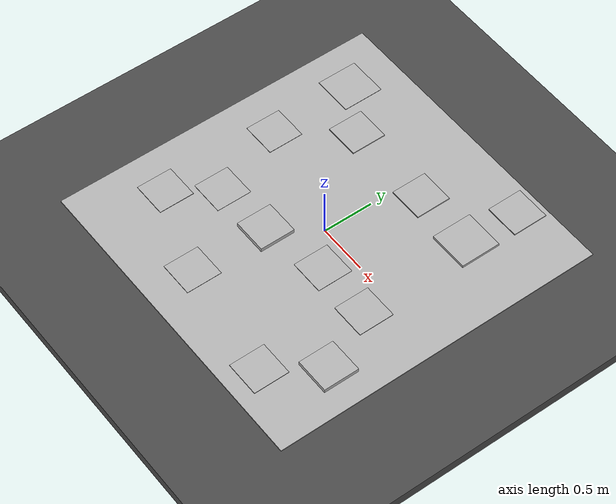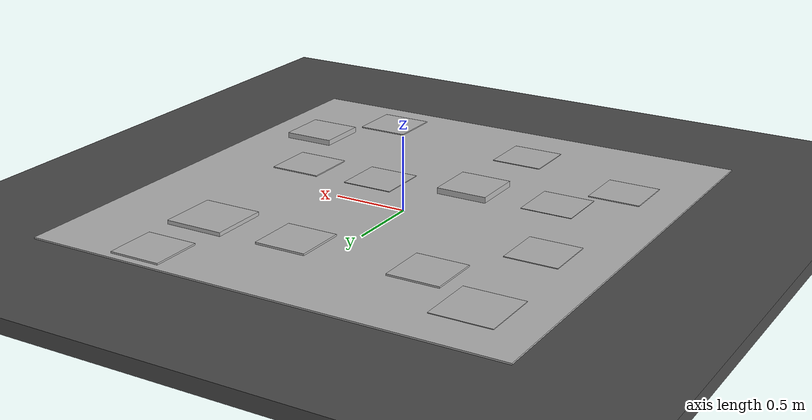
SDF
<sdf version="1.6">
 <world name="default">
  <light name="sun" type="directional">
   <pose>0 0 10 0 -0 0</pose>
   <diffuse>0.8 0.8 0.8 1</diffuse>
   <specular>0.2 0.2 0.2 1</specular>
   <attenuation>
    <range>1000</range>
    <constant>0.9</constant>
    <linear>0.01</linear>
    <quadratic>0.001</quadratic>
   </attenuation>
   <direction>-0.5 0.1 -0.9</direction>
  </light>
  <model name="ground_plane">
   <static>1</static>
   <link name="link">
    <collision name="collision">
     <geometry><plane><normal>0 0 1</normal><size>100 100</size></plane></geometry>
     <surface>
      <contact><collide_bitmask>65535</collide_bitmask></contact>
      <friction><ode><mu>100</mu><mu2>50</mu2></ode></friction>
     </surface>
    </collision>
    <visual name="visual">
     <cast_shadows>0</cast_shadows>
     <geometry><plane><normal>0 0 1</normal><size>100 100</size></plane></geometry>
     <material>
      <script><uri>file://media/materials/scripts/gazebo.material</uri><name>Gazebo/Grey</name></script>
     </material>
    </visual>
   </link>
  </model>
  <model name="asphalt_plane">
   <static>1</static>
   <link name="link">
    <collision name="collision"><geometry><box><size>20 20 0.1</size></box></geometry></collision>
    <visual name="visual">
     <cast_shadows>0</cast_shadows>
     <geometry><box><size>20 20 0.1</size></box></geometry>
     <material>
      <script>
       <uri>model://asphalt_plane/materials/scripts</uri>
       <uri>model://asphalt_plane/materials/textures</uri>
       <name>vrc/asphalt</name>
      </script>
     </material>
    </visual>
   </link>
  </model>
  <model name="aruco_map_5_5">
   <pose>0.003911 -0.006623 0 0 -0 0</pose>
   <static>1</static>
   <link name="link">
    <collision name="collision"><geometry><box><size>3.213 3.293 0.12</size></box></geometry></collision>
    <visual name="visual">
     <cast_shadows>0</cast_shadows>
     <geometry><box><size>3.213 3.293 0.12</size></box></geometry>
     <material>
      <script>
       <uri>model://aruco_map_5_5/materials/scripts</uri>
       <uri>model://aruco_map_5_5/materials/textures</uri>
       <name>aruco/Image</name>
      </script>
     </material>
    </visual>
   </link>
  </model>
  <physics name="default_physics" default="0" type="ode">
   <ode>
    <solver>
     <type>quick</type>
     <iters>10</iters>
     <sor>1.3</sor>
     <use_dynamic_moi_rescaling>0</use_dynamic_moi_rescaling>
    </solver>
    <constraints>
     <cfm>0</cfm>
     <erp>0.2</erp>
     <contact_max_correcting_vel>100</contact_max_correcting_vel>
     <contact_surface_layer>0.001</contact_surface_layer>
    </constraints>
   </ode>
   <max_step_size>0.004</max_step_size>
   <real_time_factor>1</real_time_factor>
   <real_time_update_rate>250</real_time_update_rate>
  </physics>
  <gravity>0 0 -9.8066</gravity>
  <magnetic_field>6e-06 2.3e-05 -4.2e-05</magnetic_field>
  <atmosphere type="adiabatic"/>
  <scene><ambient>0.4 0.4 0.4 1</ambient><background>0.7 0.7 0.7 1</background><shadows>1</shadows></scene>
  <spherical_coordinates>
   <surface_model>EARTH_WGS84</surface_model>
   <latitude_deg>0</latitude_deg>
   <longitude_deg>0</longitude_deg>
   <elevation>0</elevation>
   <heading_deg>0</heading_deg>
  </spherical_coordinates>
  <model name="seedQRCode">
   <static>1</static>
   <link name="link">
    <collision name="collision"><geometry><box><size>0.4 0.4 0.05</size></box></geometry></collision>
    <visual name="visual">
     <cast_shadows>0</cast_shadows>
     <geometry><box><size>0.4 0.4 0.05</size></box></geometry>
     <material>
      <script>
       <uri>model://seedQRCode/materials/scripts</uri>
       <uri>model://seedQRCode/materials/textures</uri>
       <name>seedQRCode/Image</name>
      </script>
     </material>
    </visual>
   </link>
   <pose>-1.15042 1.15146 0.039306 0 -0 0</pose>
  </model>
  <model name="blueSquare">
   <static>1</static>
   <link name="link">
    <collision name="collision"><geometry><box><size>0.35 0.35 0.05</size></box></geometry></collision>
    <visual name="visual">
     <cast_shadows>0</cast_shadows>
     <geometry><box><size>0.35 0.35 0.05</size></box></geometry>
     <material>
      <script>
       <uri>model://blueSquare/materials/scripts</uri>
       <uri>model://blueSquare/materials/textures</uri>
       <name>blueSquare/Image</name>
      </script>
     </material>
    </visual>
   </link>
   <pose>-1.1289 0.291646 0.039857 0 -0 0</pose>
  </model>
  <model name="yellowSquare">
   <static>1</static>
   <link name="link">
    <collision name="collision"><geometry><box><size>0.35 0.35 0.05</size></box></geometry></collision>
    <visual name="visual">
     <cast_shadows>0</cast_shadows>
     <geometry><box><size>0.35 0.35 0.05</size></box></geometry>
     <material>
      <script>
       <uri>model://yellowSquare/materials/scripts</uri>
       <uri>model://yellowSquare/materials/textures</uri>
       <name>yellowSquare/Image</name>
      </script>
     </material>
    </visual>
   </link>
   <pose>-1.15171 -0.864258 0.041233 0 -0 0</pose>
  </model>
  <model name="redSquare">
   <static>1</static>
   <link name="link">
    <collision name="collision"><geometry><box><size>0.35 0.35 0.05</size></box></geometry></collision>
    <visual name="visual">
     <cast_shadows>0</cast_shadows>
     <geometry><box><size>0.35 0.35 0.05</size></box></geometry>
     <material>
      <script>
       <uri>model://redSquare/materials/scripts</uri>
       <uri>model://redSquare/materials/textures</uri>
       <name>redSquare/Image</name>
      </script>
     </material>
    </visual>
   </link>
   <pose>-0.868885 -0.456198 0.038735 0 -0 0</pose>
  </model>
  <model name="blueSquare_0">
   <static>1</static>
   <link name="link">
    <collision name="collision"><geometry><box><size>0.35 0.35 0.05</size></box></geometry></collision>
    <visual name="visual">
     <cast_shadows>0</cast_shadows>
     <geometry><box><size>0.35 0.35 0.05</size></box></geometry>
     <material>
      <script>
       <uri>model://blueSquare/materials/scripts</uri>
       <uri>model://blueSquare/materials/textures</uri>
       <name>blueSquare/Image</name>
      </script>
     </material>
    </visual>
   </link>
   <pose>-0.302154 -1.17253 0.039856 0 -0 0</pose>
  </model>
  <model name="yellowCircle">
   <static>1</static>
   <link name="link">
    <collision name="collision"><geometry><box><size>0.35 0.35 0.05</size></box></geometry></collision>
    <visual name="visual">
     <cast_shadows>0</cast_shadows>
     <geometry><box><size>0.35 0.35 0.05</size></box></geometry>
     <material>
      <script>
       <uri>model://yellowCircle/materials/scripts</uri>
       <uri>model://yellowCircle/materials/textures</uri>
       <name>yellowCircle/Image</name>
      </script>
     </material>
    </visual>
   </link>
   <pose>-0.282927 -0.420536 0.074764 0 -0 0</pose>
  </model>
  <model name="redSquare_0">
   <static>1</static>
   <link name="link">
    <collision name="collision"><geometry><box><size>0.35 0.35 0.05</size></box></geometry></collision>
    <visual name="visual">
     <cast_shadows>0</cast_shadows>
     <geometry><box><size>0.35 0.35 0.05</size></box></geometry>
     <material>
      <script>
       <uri>model://redSquare/materials/scripts</uri>
       <uri>model://redSquare/materials/textures</uri>
       <name>redSquare/Image</name>
      </script>
     </material>
    </visual>
   </link>
   <pose>-0.676165 0.867146 0.045692 0 -0 0</pose>
  </model>
  <model name="blueSquare_1">
   <static>1</static>
   <link name="link">
    <collision name="collision"><geometry><box><size>0.35 0.35 0.05</size></box></geometry></collision>
    <visual name="visual">
     <cast_shadows>0</cast_shadows>
     <geometry><box><size>0.35 0.35 0.05</size></box></geometry>
     <material>
      <script>
       <uri>model://blueSquare/materials/scripts</uri>
       <uri>model://blueSquare/materials/textures</uri>
       <name>blueSquare/Image</name>
      </script>
     </material>
    </visual>
   </link>
   <pose>0.230944 0.871517 0.047398 0 -0 0</pose>
  </model>
  <model name="greenSquare">
   <static>1</static>
   <link name="link">
    <collision name="collision"><geometry><box><size>0.35 0.35 0.05</size></box></geometry></collision>
    <visual name="visual">
     <cast_shadows>0</cast_shadows>
     <geometry><box><size>0.35 0.35 0.05</size></box></geometry>
     <material>
      <script>
       <uri>model://greenSquare/materials/scripts</uri>
       <uri>model://greenSquare/materials/textures</uri>
       <name>greenSquare/Image</name>
      </script>
     </material>
    </visual>
   </link>
   <pose>0.344594 -0.28082 0.039619 0 -0 0</pose>
  </model>
  <model name="brownSquare">
   <static>1</static>
   <link name="link">
    <collision name="collision"><geometry><box><size>0.35 0.35 0.05</size></box></geometry></collision>
    <visual name="visual">
     <cast_shadows>0</cast_shadows>
     <geometry><box><size>0.35 0.35 0.05</size></box></geometry>
     <material>
      <script>
       <uri>model://brownSquare/materials/scripts</uri>
       <uri>model://brownSquare/materials/textures</uri>
       <name>brownSquare/Image</name>
      </script>
     </material>
    </visual>
   </link>
   <pose>0.862968 -1.32415 0.042205 0 -0 0</pose>
  </model>
  <model name="blueCircle">
   <static>1</static>
   <link name="link">
    <collision name="collision"><geometry><box><size>0.35 0.35 0.05</size></box></geometry></collision>
    <visual name="visual">
     <cast_shadows>0</cast_shadows>
     <geometry><box><size>0.35 0.35 0.05</size></box></geometry>
     <material>
      <script>
       <uri>model://blueCircle/materials/scripts</uri>
       <uri>model://blueCircle/materials/textures</uri>
       <name>blueCircle/Image</name>
      </script>
     </material>
    </visual>
   </link>
   <pose>1.19762 -0.863491 0.073095 0 -0 0</pose>
  </model>
  <model name="redSquare_1">
   <static>1</static>
   <link name="link">
    <collision name="collision"><geometry><box><size>0.35 0.35 0.05</size></box></geometry></collision>
    <visual name="visual">
     <cast_shadows>0</cast_shadows>
     <geometry><box><size>0.35 0.35 0.05</size></box></geometry>
     <material>
      <script>
       <uri>model://redSquare/materials/scripts</uri>
       <uri>model://redSquare/materials/textures</uri>
       <name>redSquare/Image</name>
      </script>
     </material>
    </visual>
   </link>
   <pose>0.916571 -0.28374 0.041962 0 -0 0</pose>
  </model>
  <model name="greenCircle">
   <static>1</static>
   <link name="link">
    <collision name="collision"><geometry><box><size>0.4 0.4 0.05</size></box></geometry></collision>
    <visual name="visual">
     <cast_shadows>0</cast_shadows>
     <geometry><box><size>0.4 0.4 0.05</size></box></geometry>
     <material>
      <script>
       <uri>model://greenCircle/materials/scripts</uri>
       <uri>model://greenCircle/materials/textures</uri>
       <name>greenCircle/Image</name>
      </script>
     </material>
    </visual>
   </link>
   <pose>0.856732 0.862271 0.060629 0 -0 0</pose>
  </model>
  <model name="yellowSquare_0">
   <static>1</static>
   <link name="link">
    <collision name="collision"><geometry><box><size>0.35 0.35 0.05</size></box></geometry></collision>
    <visual name="visual">
     <cast_shadows>0</cast_shadows>
     <geometry><box><size>0.35 0.35 0.05</size></box></geometry>
     <material>
      <script>
       <uri>model://yellowSquare/materials/scripts</uri>
       <uri>model://yellowSquare/materials/textures</uri>
       <name>yellowSquare/Image</name>
      </script>
     </material>
    </visual>
   </link>
   <pose>0.877535 1.41433 0.045778 0 -0 0</pose>
  </model>
 </world>
</sdf>
